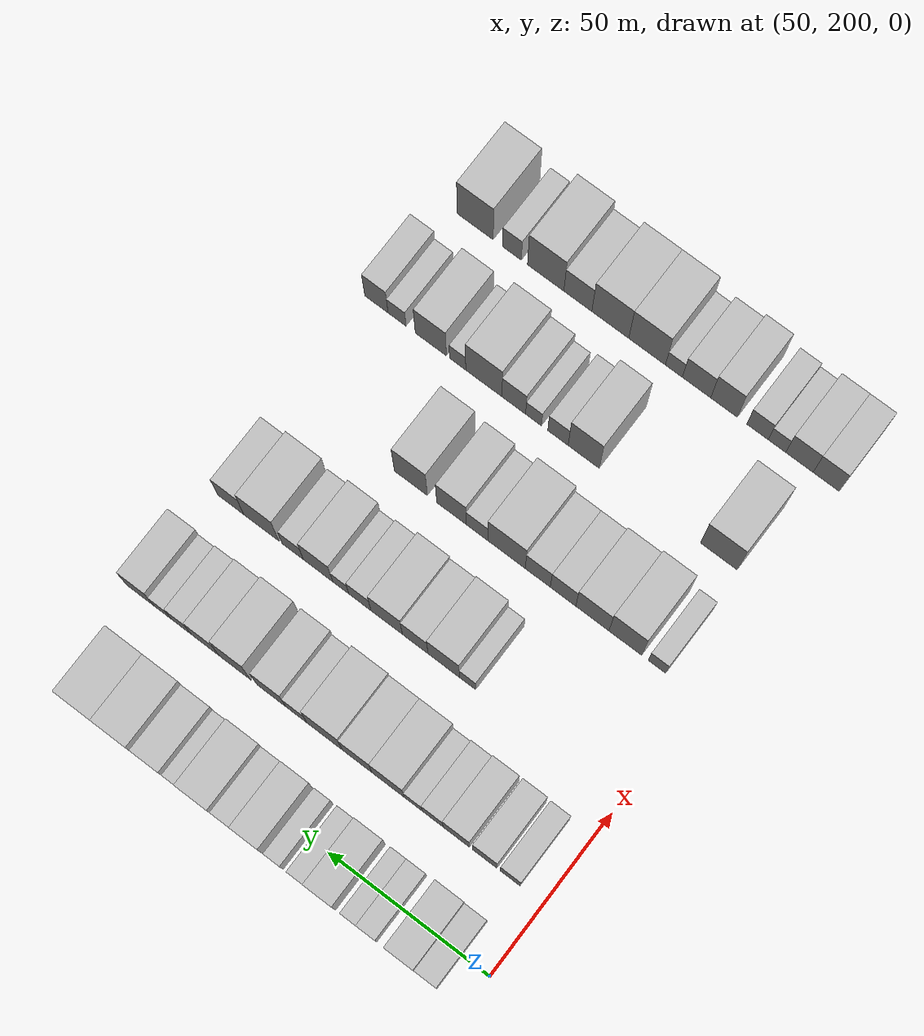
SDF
<sdf version="1.6">
 <world name="default">
  <model name="building_87">
   <static>1</static>
   <pose>50.0000 211.9110 0 0.000000 0.000000 0.000000</pose>
   <link name="link">
    <pose>0 0 7.50 0 0 0</pose>
    <collision name="collision"><geometry><box><size>20.0000 6.7478 15.0000</size></box></geometry></collision>
    <visual name="visual">
     <cast_shadows>0</cast_shadows>
     <geometry><box><size>20.0000 6.7478 15.0000</size></box></geometry>
     <material>
      <script>
       <uri>model://HANNAS_wall/materials/scripts</uri>
       <uri>model://HANNAS_wall/materials/textures</uri>
       <name>vrc/HANNAS_wall</name>
      </script>
     </material>
    </visual>
   </link>
  </model>
  <model name="building_88">
   <static>1</static>
   <pose>50.0000 219.6801 0 0.000000 0.000000 0.000000</pose>
   <link name="link">
    <pose>0 0 10.50 0 0 0</pose>
    <collision name="collision"><geometry><box><size>20.0000 8.7903 21.0000</size></box></geometry></collision>
    <visual name="visual">
     <cast_shadows>0</cast_shadows>
     <geometry><box><size>20.0000 8.7903 21.0000</size></box></geometry>
     <material>
      <script>
       <uri>model://HANNAS_wall/materials/scripts</uri>
       <uri>model://HANNAS_wall/materials/textures</uri>
       <name>vrc/HANNAS_wall</name>
      </script>
     </material>
    </visual>
   </link>
  </model>
  <model name="building_89">
   <static>1</static>
   <pose>50.0000 230.0266 0 0.000000 0.000000 0.000000</pose>
   <link name="link">
    <pose>0 0 6.00 0 0 0</pose>
    <collision name="collision"><geometry><box><size>20.0000 5.9026 12.0000</size></box></geometry></collision>
    <visual name="visual">
     <cast_shadows>0</cast_shadows>
     <geometry><box><size>20.0000 5.9026 12.0000</size></box></geometry>
     <material>
      <script>
       <uri>model://HANNAS_wall/materials/scripts</uri>
       <uri>model://HANNAS_wall/materials/textures</uri>
       <name>vrc/HANNAS_wall</name>
      </script>
     </material>
    </visual>
   </link>
  </model>
  <model name="building_90">
   <static>1</static>
   <pose>50.0000 235.4046 0 0.000000 0.000000 0.000000</pose>
   <link name="link">
    <pose>0 0 6.00 0 0 0</pose>
    <collision name="collision"><geometry><box><size>20.0000 4.8536 12.0000</size></box></geometry></collision>
    <visual name="visual">
     <cast_shadows>0</cast_shadows>
     <geometry><box><size>20.0000 4.8536 12.0000</size></box></geometry>
     <material>
      <script>
       <uri>model://HANNAS_wall/materials/scripts</uri>
       <uri>model://HANNAS_wall/materials/textures</uri>
       <name>vrc/HANNAS_wall</name>
      </script>
     </material>
    </visual>
   </link>
  </model>
  <model name="building_91">
   <static>1</static>
   <pose>50.0000 244.2342 0 0.000000 0.000000 0.000000</pose>
   <link name="link">
    <pose>0 0 9.00 0 0 0</pose>
    <collision name="collision"><geometry><box><size>20.0000 8.8056 18.0000</size></box></geometry></collision>
    <visual name="visual">
     <cast_shadows>0</cast_shadows>
     <geometry><box><size>20.0000 8.8056 18.0000</size></box></geometry>
     <material>
      <script>
       <uri>model://HANNAS_wall/materials/scripts</uri>
       <uri>model://HANNAS_wall/materials/textures</uri>
       <name>vrc/HANNAS_wall</name>
      </script>
     </material>
    </visual>
   </link>
  </model>
  <model name="building_92">
   <static>1</static>
   <pose>50.0000 251.3989 0 0.000000 0.000000 0.000000</pose>
   <link name="link">
    <pose>0 0 6.00 0 0 0</pose>
    <collision name="collision"><geometry><box><size>20.0000 5.5237 12.0000</size></box></geometry></collision>
    <visual name="visual">
     <cast_shadows>0</cast_shadows>
     <geometry><box><size>20.0000 5.5237 12.0000</size></box></geometry>
     <material>
      <script>
       <uri>model://HANNAS_wall/materials/scripts</uri>
       <uri>model://HANNAS_wall/materials/textures</uri>
       <name>vrc/HANNAS_wall</name>
      </script>
     </material>
    </visual>
   </link>
  </model>
  <model name="building_93">
   <static>1</static>
   <pose>50.0000 258.7114 0 0.000000 0.000000 0.000000</pose>
   <link name="link">
    <pose>0 0 6.00 0 0 0</pose>
    <collision name="collision"><geometry><box><size>20.0000 5.1014 12.0000</size></box></geometry></collision>
    <visual name="visual">
     <cast_shadows>0</cast_shadows>
     <geometry><box><size>20.0000 5.1014 12.0000</size></box></geometry>
     <material>
      <script>
       <uri>model://HANNAS_wall/materials/scripts</uri>
       <uri>model://HANNAS_wall/materials/textures</uri>
       <name>vrc/HANNAS_wall</name>
      </script>
     </material>
    </visual>
   </link>
  </model>
  <model name="building_94">
   <static>1</static>
   <pose>50.0000 266.6407 0 0.000000 0.000000 0.000000</pose>
   <link name="link">
    <pose>0 0 9.00 0 0 0</pose>
    <collision name="collision"><geometry><box><size>20.0000 8.7573 18.0000</size></box></geometry></collision>
    <visual name="visual">
     <cast_shadows>0</cast_shadows>
     <geometry><box><size>20.0000 8.7573 18.0000</size></box></geometry>
     <material>
      <script>
       <uri>model://HANNAS_wall/materials/scripts</uri>
       <uri>model://HANNAS_wall/materials/textures</uri>
       <name>vrc/HANNAS_wall</name>
      </script>
     </material>
    </visual>
   </link>
  </model>
  <model name="building_95">
   <static>1</static>
   <pose>50.0000 274.1439 0 0.000000 0.000000 0.000000</pose>
   <link name="link">
    <pose>0 0 7.50 0 0 0</pose>
    <collision name="collision"><geometry><box><size>20.0000 6.2490 15.0000</size></box></geometry></collision>
    <visual name="visual">
     <cast_shadows>0</cast_shadows>
     <geometry><box><size>20.0000 6.2490 15.0000</size></box></geometry>
     <material>
      <script>
       <uri>model://HANNAS_wall/materials/scripts</uri>
       <uri>model://HANNAS_wall/materials/textures</uri>
       <name>vrc/HANNAS_wall</name>
      </script>
     </material>
    </visual>
   </link>
  </model>
  <model name="building_96">
   <static>1</static>
   <pose>50.0000 282.3075 0 0.000000 0.000000 0.000000</pose>
   <link name="link">
    <pose>0 0 10.50 0 0 0</pose>
    <collision name="collision"><geometry><box><size>20.0000 10.0783 21.0000</size></box></geometry></collision>
    <visual name="visual">
     <cast_shadows>0</cast_shadows>
     <geometry><box><size>20.0000 10.0783 21.0000</size></box></geometry>
     <material>
      <script>
       <uri>model://HANNAS_wall/materials/scripts</uri>
       <uri>model://HANNAS_wall/materials/textures</uri>
       <name>vrc/HANNAS_wall</name>
      </script>
     </material>
    </visual>
   </link>
  </model>
  <model name="building_97">
   <static>1</static>
   <pose>50.0000 289.9833 0 0.000000 0.000000 0.000000</pose>
   <link name="link">
    <pose>0 0 6.00 0 0 0</pose>
    <collision name="collision"><geometry><box><size>20.0000 5.2733 12.0000</size></box></geometry></collision>
    <visual name="visual">
     <cast_shadows>0</cast_shadows>
     <geometry><box><size>20.0000 5.2733 12.0000</size></box></geometry>
     <material>
      <script>
       <uri>model://HANNAS_wall/materials/scripts</uri>
       <uri>model://HANNAS_wall/materials/textures</uri>
       <name>vrc/HANNAS_wall</name>
      </script>
     </material>
    </visual>
   </link>
  </model>
  <model name="building_98">
   <static>1</static>
   <pose>50.0000 297.0810 0 0.000000 0.000000 0.000000</pose>
   <link name="link">
    <pose>0 0 9.00 0 0 0</pose>
    <collision name="collision"><geometry><box><size>20.0000 8.9220 18.0000</size></box></geometry></collision>
    <visual name="visual">
     <cast_shadows>0</cast_shadows>
     <geometry><box><size>20.0000 8.9220 18.0000</size></box></geometry>
     <material>
      <script>
       <uri>model://HANNAS_wall/materials/scripts</uri>
       <uri>model://HANNAS_wall/materials/textures</uri>
       <name>vrc/HANNAS_wall</name>
      </script>
     </material>
    </visual>
   </link>
  </model>
  <model name="building_99">
   <static>1</static>
   <pose>50.0000 306.9969 0 0.000000 0.000000 0.000000</pose>
   <link name="link">
    <pose>0 0 12.00 0 0 0</pose>
    <collision name="collision"><geometry><box><size>20.0000 10.9099 24.0000</size></box></geometry></collision>
    <visual name="visual">
     <cast_shadows>0</cast_shadows>
     <geometry><box><size>20.0000 10.9099 24.0000</size></box></geometry>
     <material>
      <script>
       <uri>model://HANNAS_wall/materials/scripts</uri>
       <uri>model://HANNAS_wall/materials/textures</uri>
       <name>vrc/HANNAS_wall</name>
      </script>
     </material>
    </visual>
   </link>
  </model>
  <model name="building_100">
   <static>1</static>
   <pose>50.0000 318.2192 0 0.000000 0.000000 0.000000</pose>
   <link name="link">
    <pose>0 0 12.00 0 0 0</pose>
    <collision name="collision"><geometry><box><size>20.0000 11.5347 24.0000</size></box></geometry></collision>
    <visual name="visual">
     <cast_shadows>0</cast_shadows>
     <geometry><box><size>20.0000 11.5347 24.0000</size></box></geometry>
     <material>
      <script>
       <uri>model://HANNAS_wall/materials/scripts</uri>
       <uri>model://HANNAS_wall/materials/textures</uri>
       <name>vrc/HANNAS_wall</name>
      </script>
     </material>
    </visual>
   </link>
  </model>
  <model name="building_200">
   <static>1</static>
   <pose>82.0000 210.4566 0 0.000000 0.000000 0.000000</pose>
   <link name="link">
    <pose>0 0 7.50 0 0 0</pose>
    <collision name="collision"><geometry><box><size>20.0000 6.1697 15.0000</size></box></geometry></collision>
    <visual name="visual">
     <cast_shadows>0</cast_shadows>
     <geometry><box><size>20.0000 6.1697 15.0000</size></box></geometry>
     <material>
      <script>
       <uri>model://HANNAS_wall/materials/scripts</uri>
       <uri>model://HANNAS_wall/materials/textures</uri>
       <name>vrc/HANNAS_wall</name>
      </script>
     </material>
    </visual>
   </link>
  </model>
  <model name="building_201">
   <static>1</static>
   <pose>82.0000 218.2727 0 0.000000 0.000000 0.000000</pose>
   <link name="link">
    <pose>0 0 9.00 0 0 0</pose>
    <collision name="collision"><geometry><box><size>20.0000 7.4626 18.0000</size></box></geometry></collision>
    <visual name="visual">
     <cast_shadows>0</cast_shadows>
     <geometry><box><size>20.0000 7.4626 18.0000</size></box></geometry>
     <material>
      <script>
       <uri>model://HANNAS_wall/materials/scripts</uri>
       <uri>model://HANNAS_wall/materials/textures</uri>
       <name>vrc/HANNAS_wall</name>
      </script>
     </material>
    </visual>
   </link>
  </model>
  <model name="building_202">
   <static>1</static>
   <pose>82.0000 227.0749 0 0.000000 0.000000 0.000000</pose>
   <link name="link">
    <pose>0 0 9.00 0 0 0</pose>
    <collision name="collision"><geometry><box><size>20.0000 8.1417 18.0000</size></box></geometry></collision>
    <visual name="visual">
     <cast_shadows>0</cast_shadows>
     <geometry><box><size>20.0000 8.1417 18.0000</size></box></geometry>
     <material>
      <script>
       <uri>model://HANNAS_wall/materials/scripts</uri>
       <uri>model://HANNAS_wall/materials/textures</uri>
       <name>vrc/HANNAS_wall</name>
      </script>
     </material>
    </visual>
   </link>
  </model>
  <model name="building_203">
   <static>1</static>
   <pose>82.0000 234.3984 0 0.000000 0.000000 0.000000</pose>
   <link name="link">
    <pose>0 0 7.50 0 0 0</pose>
    <collision name="collision"><geometry><box><size>20.0000 6.5054 15.0000</size></box></geometry></collision>
    <visual name="visual">
     <cast_shadows>0</cast_shadows>
     <geometry><box><size>20.0000 6.5054 15.0000</size></box></geometry>
     <material>
      <script>
       <uri>model://HANNAS_wall/materials/scripts</uri>
       <uri>model://HANNAS_wall/materials/textures</uri>
       <name>vrc/HANNAS_wall</name>
      </script>
     </material>
    </visual>
   </link>
  </model>
  <model name="building_204">
   <static>1</static>
   <pose>82.0000 240.3894 0 0.000000 0.000000 0.000000</pose>
   <link name="link">
    <pose>0 0 6.00 0 0 0</pose>
    <collision name="collision"><geometry><box><size>20.0000 5.4767 12.0000</size></box></geometry></collision>
    <visual name="visual">
     <cast_shadows>0</cast_shadows>
     <geometry><box><size>20.0000 5.4767 12.0000</size></box></geometry>
     <material>
      <script>
       <uri>model://HANNAS_wall/materials/scripts</uri>
       <uri>model://HANNAS_wall/materials/textures</uri>
       <name>vrc/HANNAS_wall</name>
      </script>
     </material>
    </visual>
   </link>
  </model>
  <model name="building_205">
   <static>1</static>
   <pose>82.0000 248.1827 0 0.000000 0.000000 0.000000</pose>
   <link name="link">
    <pose>0 0 10.50 0 0 0</pose>
    <collision name="collision"><geometry><box><size>20.0000 10.1099 21.0000</size></box></geometry></collision>
    <visual name="visual">
     <cast_shadows>0</cast_shadows>
     <geometry><box><size>20.0000 10.1099 21.0000</size></box></geometry>
     <material>
      <script>
       <uri>model://HANNAS_wall/materials/scripts</uri>
       <uri>model://HANNAS_wall/materials/textures</uri>
       <name>vrc/HANNAS_wall</name>
      </script>
     </material>
    </visual>
   </link>
  </model>
  <model name="building_206">
   <static>1</static>
   <pose>82.0000 257.8901 0 0.000000 0.000000 0.000000</pose>
   <link name="link">
    <pose>0 0 10.50 0 0 0</pose>
    <collision name="collision"><geometry><box><size>20.0000 9.3049 21.0000</size></box></geometry></collision>
    <visual name="visual">
     <cast_shadows>0</cast_shadows>
     <geometry><box><size>20.0000 9.3049 21.0000</size></box></geometry>
     <material>
      <script>
       <uri>model://HANNAS_wall/materials/scripts</uri>
       <uri>model://HANNAS_wall/materials/textures</uri>
       <name>vrc/HANNAS_wall</name>
      </script>
     </material>
    </visual>
   </link>
  </model>
  <model name="building_207">
   <static>1</static>
   <pose>82.0000 268.0998 0 0.000000 0.000000 0.000000</pose>
   <link name="link">
    <pose>0 0 12.00 0 0 0</pose>
    <collision name="collision"><geometry><box><size>20.0000 11.1146 24.0000</size></box></geometry></collision>
    <visual name="visual">
     <cast_shadows>0</cast_shadows>
     <geometry><box><size>20.0000 11.1146 24.0000</size></box></geometry>
     <material>
      <script>
       <uri>model://HANNAS_wall/materials/scripts</uri>
       <uri>model://HANNAS_wall/materials/textures</uri>
       <name>vrc/HANNAS_wall</name>
      </script>
     </material>
    </visual>
   </link>
  </model>
  <model name="building_208">
   <static>1</static>
   <pose>82.0000 277.0152 0 0.000000 0.000000 0.000000</pose>
   <link name="link">
    <pose>0 0 7.50 0 0 0</pose>
    <collision name="collision"><geometry><box><size>20.0000 6.7163 15.0000</size></box></geometry></collision>
    <visual name="visual">
     <cast_shadows>0</cast_shadows>
     <geometry><box><size>20.0000 6.7163 15.0000</size></box></geometry>
     <material>
      <script>
       <uri>model://HANNAS_wall/materials/scripts</uri>
       <uri>model://HANNAS_wall/materials/textures</uri>
       <name>vrc/HANNAS_wall</name>
      </script>
     </material>
    </visual>
   </link>
  </model>
  <model name="building_209">
   <static>1</static>
   <pose>82.0000 284.9316 0 0.000000 0.000000 0.000000</pose>
   <link name="link">
    <pose>0 0 10.50 0 0 0</pose>
    <collision name="collision"><geometry><box><size>20.0000 9.1165 21.0000</size></box></geometry></collision>
    <visual name="visual">
     <cast_shadows>0</cast_shadows>
     <geometry><box><size>20.0000 9.1165 21.0000</size></box></geometry>
     <material>
      <script>
       <uri>model://HANNAS_wall/materials/scripts</uri>
       <uri>model://HANNAS_wall/materials/textures</uri>
       <name>vrc/HANNAS_wall</name>
      </script>
     </material>
    </visual>
   </link>
  </model>
  <model name="building_210">
   <static>1</static>
   <pose>82.0000 296.5246 0 0.000000 0.000000 0.000000</pose>
   <link name="link">
    <pose>0 0 12.00 0 0 0</pose>
    <collision name="collision"><geometry><box><size>20.0000 10.0693 24.0000</size></box></geometry></collision>
    <visual name="visual">
     <cast_shadows>0</cast_shadows>
     <geometry><box><size>20.0000 10.0693 24.0000</size></box></geometry>
     <material>
      <script>
       <uri>model://HANNAS_wall/materials/scripts</uri>
       <uri>model://HANNAS_wall/materials/textures</uri>
       <name>vrc/HANNAS_wall</name>
      </script>
     </material>
    </visual>
   </link>
  </model>
  <model name="building_211">
   <static>1</static>
   <pose>82.0000 306.0070 0 0.000000 0.000000 0.000000</pose>
   <link name="link">
    <pose>0 0 9.00 0 0 0</pose>
    <collision name="collision"><geometry><box><size>20.0000 8.8955 18.0000</size></box></geometry></collision>
    <visual name="visual">
     <cast_shadows>0</cast_shadows>
     <geometry><box><size>20.0000 8.8955 18.0000</size></box></geometry>
     <material>
      <script>
       <uri>model://HANNAS_wall/materials/scripts</uri>
       <uri>model://HANNAS_wall/materials/textures</uri>
       <name>vrc/HANNAS_wall</name>
      </script>
     </material>
    </visual>
   </link>
  </model>
  <model name="building_212">
   <static>1</static>
   <pose>82.0000 313.7007 0 0.000000 0.000000 0.000000</pose>
   <link name="link">
    <pose>0 0 7.50 0 0 0</pose>
    <collision name="collision"><geometry><box><size>20.0000 6.4919 15.0000</size></box></geometry></collision>
    <visual name="visual">
     <cast_shadows>0</cast_shadows>
     <geometry><box><size>20.0000 6.4919 15.0000</size></box></geometry>
     <material>
      <script>
       <uri>model://HANNAS_wall/materials/scripts</uri>
       <uri>model://HANNAS_wall/materials/textures</uri>
       <name>vrc/HANNAS_wall</name>
      </script>
     </material>
    </visual>
   </link>
  </model>
  <model name="building_213">
   <static>1</static>
   <pose>82.0000 319.7476 0 0.000000 0.000000 0.000000</pose>
   <link name="link">
    <pose>0 0 6.00 0 0 0</pose>
    <collision name="collision"><geometry><box><size>20.0000 5.6020 12.0000</size></box></geometry></collision>
    <visual name="visual">
     <cast_shadows>0</cast_shadows>
     <geometry><box><size>20.0000 5.6020 12.0000</size></box></geometry>
     <material>
      <script>
       <uri>model://HANNAS_wall/materials/scripts</uri>
       <uri>model://HANNAS_wall/materials/textures</uri>
       <name>vrc/HANNAS_wall</name>
      </script>
     </material>
    </visual>
   </link>
  </model>
  <model name="building_214">
   <static>1</static>
   <pose>82.0000 326.8966 0 0.000000 0.000000 0.000000</pose>
   <link name="link">
    <pose>0 0 9.00 0 0 0</pose>
    <collision name="collision"><geometry><box><size>20.0000 8.6959 18.0000</size></box></geometry></collision>
    <visual name="visual">
     <cast_shadows>0</cast_shadows>
     <geometry><box><size>20.0000 8.6959 18.0000</size></box></geometry>
     <material>
      <script>
       <uri>model://HANNAS_wall/materials/scripts</uri>
       <uri>model://HANNAS_wall/materials/textures</uri>
       <name>vrc/HANNAS_wall</name>
      </script>
     </material>
    </visual>
   </link>
  </model>
  <model name="building_322">
   <static>1</static>
   <pose>114.0000 247.9504 0 0.000000 0.000000 0.000000</pose>
   <link name="link">
    <pose>0 0 6.00 0 0 0</pose>
    <collision name="collision"><geometry><box><size>20.0000 5.0676 12.0000</size></box></geometry></collision>
    <visual name="visual">
     <cast_shadows>0</cast_shadows>
     <geometry><box><size>20.0000 5.0676 12.0000</size></box></geometry>
     <material>
      <script>
       <uri>model://HANNAS_wall/materials/scripts</uri>
       <uri>model://HANNAS_wall/materials/textures</uri>
       <name>vrc/HANNAS_wall</name>
      </script>
     </material>
    </visual>
   </link>
  </model>
  <model name="building_323">
   <static>1</static>
   <pose>114.0000 255.4274 0 0.000000 0.000000 0.000000</pose>
   <link name="link">
    <pose>0 0 10.50 0 0 0</pose>
    <collision name="collision"><geometry><box><size>20.0000 9.8864 21.0000</size></box></geometry></collision>
    <visual name="visual">
     <cast_shadows>0</cast_shadows>
     <geometry><box><size>20.0000 9.8864 21.0000</size></box></geometry>
     <material>
      <script>
       <uri>model://HANNAS_wall/materials/scripts</uri>
       <uri>model://HANNAS_wall/materials/textures</uri>
       <name>vrc/HANNAS_wall</name>
      </script>
     </material>
    </visual>
   </link>
  </model>
  <model name="building_324">
   <static>1</static>
   <pose>114.0000 264.4057 0 0.000000 0.000000 0.000000</pose>
   <link name="link">
    <pose>0 0 9.00 0 0 0</pose>
    <collision name="collision"><geometry><box><size>20.0000 8.0701 18.0000</size></box></geometry></collision>
    <visual name="visual">
     <cast_shadows>0</cast_shadows>
     <geometry><box><size>20.0000 8.0701 18.0000</size></box></geometry>
     <material>
      <script>
       <uri>model://HANNAS_wall/materials/scripts</uri>
       <uri>model://HANNAS_wall/materials/textures</uri>
       <name>vrc/HANNAS_wall</name>
      </script>
     </material>
    </visual>
   </link>
  </model>
  <model name="building_325">
   <static>1</static>
   <pose>114.0000 273.4191 0 0.000000 0.000000 0.000000</pose>
   <link name="link">
    <pose>0 0 10.50 0 0 0</pose>
    <collision name="collision"><geometry><box><size>20.0000 9.9567 21.0000</size></box></geometry></collision>
    <visual name="visual">
     <cast_shadows>0</cast_shadows>
     <geometry><box><size>20.0000 9.9567 21.0000</size></box></geometry>
     <material>
      <script>
       <uri>model://HANNAS_wall/materials/scripts</uri>
       <uri>model://HANNAS_wall/materials/textures</uri>
       <name>vrc/HANNAS_wall</name>
      </script>
     </material>
    </visual>
   </link>
  </model>
  <model name="building_326">
   <static>1</static>
   <pose>114.0000 281.9434 0 0.000000 0.000000 0.000000</pose>
   <link name="link">
    <pose>0 0 7.50 0 0 0</pose>
    <collision name="collision"><geometry><box><size>20.0000 7.0919 15.0000</size></box></geometry></collision>
    <visual name="visual">
     <cast_shadows>0</cast_shadows>
     <geometry><box><size>20.0000 7.0919 15.0000</size></box></geometry>
     <material>
      <script>
       <uri>model://HANNAS_wall/materials/scripts</uri>
       <uri>model://HANNAS_wall/materials/textures</uri>
       <name>vrc/HANNAS_wall</name>
      </script>
     </material>
    </visual>
   </link>
  </model>
  <model name="building_327">
   <static>1</static>
   <pose>114.0000 288.0153 0 0.000000 0.000000 0.000000</pose>
   <link name="link">
    <pose>0 0 6.00 0 0 0</pose>
    <collision name="collision"><geometry><box><size>20.0000 5.0517 12.0000</size></box></geometry></collision>
    <visual name="visual">
     <cast_shadows>0</cast_shadows>
     <geometry><box><size>20.0000 5.0517 12.0000</size></box></geometry>
     <material>
      <script>
       <uri>model://HANNAS_wall/materials/scripts</uri>
       <uri>model://HANNAS_wall/materials/textures</uri>
       <name>vrc/HANNAS_wall</name>
      </script>
     </material>
    </visual>
   </link>
  </model>
  <model name="building_328">
   <static>1</static>
   <pose>114.0000 295.2343 0 0.000000 0.000000 0.000000</pose>
   <link name="link">
    <pose>0 0 10.50 0 0 0</pose>
    <collision name="collision"><geometry><box><size>20.0000 9.3864 21.0000</size></box></geometry></collision>
    <visual name="visual">
     <cast_shadows>0</cast_shadows>
     <geometry><box><size>20.0000 9.3864 21.0000</size></box></geometry>
     <material>
      <script>
       <uri>model://HANNAS_wall/materials/scripts</uri>
       <uri>model://HANNAS_wall/materials/textures</uri>
       <name>vrc/HANNAS_wall</name>
      </script>
     </material>
    </visual>
   </link>
  </model>
  <model name="building_329">
   <static>1</static>
   <pose>114.0000 303.3341 0 0.000000 0.000000 0.000000</pose>
   <link name="link">
    <pose>0 0 7.50 0 0 0</pose>
    <collision name="collision"><geometry><box><size>20.0000 6.8130 15.0000</size></box></geometry></collision>
    <visual name="visual">
     <cast_shadows>0</cast_shadows>
     <geometry><box><size>20.0000 6.8130 15.0000</size></box></geometry>
     <material>
      <script>
       <uri>model://HANNAS_wall/materials/scripts</uri>
       <uri>model://HANNAS_wall/materials/textures</uri>
       <name>vrc/HANNAS_wall</name>
      </script>
     </material>
    </visual>
   </link>
  </model>
  <model name="building_330">
   <static>1</static>
   <pose>114.0000 313.3541 0 0.000000 0.000000 0.000000</pose>
   <link name="link">
    <pose>0 0 12.00 0 0 0</pose>
    <collision name="collision"><geometry><box><size>20.0000 11.2269 24.0000</size></box></geometry></collision>
    <visual name="visual">
     <cast_shadows>0</cast_shadows>
     <geometry><box><size>20.0000 11.2269 24.0000</size></box></geometry>
     <material>
      <script>
       <uri>model://HANNAS_wall/materials/scripts</uri>
       <uri>model://HANNAS_wall/materials/textures</uri>
       <name>vrc/HANNAS_wall</name>
      </script>
     </material>
    </visual>
   </link>
  </model>
  <model name="building_331">
   <static>1</static>
   <pose>114.0000 323.1996 0 0.000000 0.000000 0.000000</pose>
   <link name="link">
    <pose>0 0 9.00 0 0 0</pose>
    <collision name="collision"><geometry><box><size>20.0000 8.4641 18.0000</size></box></geometry></collision>
    <visual name="visual">
     <cast_shadows>0</cast_shadows>
     <geometry><box><size>20.0000 8.4641 18.0000</size></box></geometry>
     <material>
      <script>
       <uri>model://HANNAS_wall/materials/scripts</uri>
       <uri>model://HANNAS_wall/materials/textures</uri>
       <name>vrc/HANNAS_wall</name>
      </script>
     </material>
    </visual>
   </link>
  </model>
  <model name="building_441">
   <static>1</static>
   <pose>146.0000 212.8642 0 0.000000 0.000000 0.000000</pose>
   <link name="link">
    <pose>0 0 6.00 0 0 0</pose>
    <collision name="collision"><geometry><box><size>20.0000 5.4628 12.0000</size></box></geometry></collision>
    <visual name="visual">
     <cast_shadows>0</cast_shadows>
     <geometry><box><size>20.0000 5.4628 12.0000</size></box></geometry>
     <material>
      <script>
       <uri>model://HANNAS_wall/materials/scripts</uri>
       <uri>model://HANNAS_wall/materials/textures</uri>
       <name>vrc/HANNAS_wall</name>
      </script>
     </material>
    </visual>
   </link>
  </model>
  <model name="building_442">
   <static>1</static>
   <pose>146.0000 222.7075 0 0.000000 0.000000 0.000000</pose>
   <link name="link">
    <pose>0 0 12.00 0 0 0</pose>
    <collision name="collision"><geometry><box><size>20.0000 10.2238 24.0000</size></box></geometry></collision>
    <visual name="visual">
     <cast_shadows>0</cast_shadows>
     <geometry><box><size>20.0000 10.2238 24.0000</size></box></geometry>
     <material>
      <script>
       <uri>model://HANNAS_wall/materials/scripts</uri>
       <uri>model://HANNAS_wall/materials/textures</uri>
       <name>vrc/HANNAS_wall</name>
      </script>
     </material>
    </visual>
   </link>
  </model>
  <model name="building_443">
   <static>1</static>
   <pose>146.0000 233.0141 0 0.000000 0.000000 0.000000</pose>
   <link name="link">
    <pose>0 0 10.50 0 0 0</pose>
    <collision name="collision"><geometry><box><size>20.0000 10.3893 21.0000</size></box></geometry></collision>
    <visual name="visual">
     <cast_shadows>0</cast_shadows>
     <geometry><box><size>20.0000 10.3893 21.0000</size></box></geometry>
     <material>
      <script>
       <uri>model://HANNAS_wall/materials/scripts</uri>
       <uri>model://HANNAS_wall/materials/textures</uri>
       <name>vrc/HANNAS_wall</name>
      </script>
     </material>
    </visual>
   </link>
  </model>
  <model name="building_444">
   <static>1</static>
   <pose>146.0000 242.2068 0 0.000000 0.000000 0.000000</pose>
   <link name="link">
    <pose>0 0 9.00 0 0 0</pose>
    <collision name="collision"><geometry><box><size>20.0000 7.9962 18.0000</size></box></geometry></collision>
    <visual name="visual">
     <cast_shadows>0</cast_shadows>
     <geometry><box><size>20.0000 7.9962 18.0000</size></box></geometry>
     <material>
      <script>
       <uri>model://HANNAS_wall/materials/scripts</uri>
       <uri>model://HANNAS_wall/materials/textures</uri>
       <name>vrc/HANNAS_wall</name>
      </script>
     </material>
    </visual>
   </link>
  </model>
  <model name="building_445">
   <static>1</static>
   <pose>146.0000 250.1479 0 0.000000 0.000000 0.000000</pose>
   <link name="link">
    <pose>0 0 9.00 0 0 0</pose>
    <collision name="collision"><geometry><box><size>20.0000 7.8859 18.0000</size></box></geometry></collision>
    <visual name="visual">
     <cast_shadows>0</cast_shadows>
     <geometry><box><size>20.0000 7.8859 18.0000</size></box></geometry>
     <material>
      <script>
       <uri>model://HANNAS_wall/materials/scripts</uri>
       <uri>model://HANNAS_wall/materials/textures</uri>
       <name>vrc/HANNAS_wall</name>
      </script>
     </material>
    </visual>
   </link>
  </model>
  <model name="building_446">
   <static>1</static>
   <pose>146.0000 260.0347 0 0.000000 0.000000 0.000000</pose>
   <link name="link">
    <pose>0 0 12.00 0 0 0</pose>
    <collision name="collision"><geometry><box><size>20.0000 11.8876 24.0000</size></box></geometry></collision>
    <visual name="visual">
     <cast_shadows>0</cast_shadows>
     <geometry><box><size>20.0000 11.8876 24.0000</size></box></geometry>
     <material>
      <script>
       <uri>model://HANNAS_wall/materials/scripts</uri>
       <uri>model://HANNAS_wall/materials/textures</uri>
       <name>vrc/HANNAS_wall</name>
      </script>
     </material>
    </visual>
   </link>
  </model>
  <model name="building_447">
   <static>1</static>
   <pose>146.0000 269.3536 0 0.000000 0.000000 0.000000</pose>
   <link name="link">
    <pose>0 0 7.50 0 0 0</pose>
    <collision name="collision"><geometry><box><size>20.0000 6.7502 15.0000</size></box></geometry></collision>
    <visual name="visual">
     <cast_shadows>0</cast_shadows>
     <geometry><box><size>20.0000 6.7502 15.0000</size></box></geometry>
     <material>
      <script>
       <uri>model://HANNAS_wall/materials/scripts</uri>
       <uri>model://HANNAS_wall/materials/textures</uri>
       <name>vrc/HANNAS_wall</name>
      </script>
     </material>
    </visual>
   </link>
  </model>
  <model name="building_448">
   <static>1</static>
   <pose>146.0000 277.4259 0 0.000000 0.000000 0.000000</pose>
   <link name="link">
    <pose>0 0 10.50 0 0 0</pose>
    <collision name="collision"><geometry><box><size>20.0000 9.3944 21.0000</size></box></geometry></collision>
    <visual name="visual">
     <cast_shadows>0</cast_shadows>
     <geometry><box><size>20.0000 9.3944 21.0000</size></box></geometry>
     <material>
      <script>
       <uri>model://HANNAS_wall/materials/scripts</uri>
       <uri>model://HANNAS_wall/materials/textures</uri>
       <name>vrc/HANNAS_wall</name>
      </script>
     </material>
    </visual>
   </link>
  </model>
  <model name="building_449">
   <static>1</static>
   <pose>146.0000 290.3874 0 0.000000 0.000000 0.000000</pose>
   <link name="link">
    <pose>0 0 12.00 0 0 0</pose>
    <collision name="collision"><geometry><box><size>20.0000 10.5287 24.0000</size></box></geometry></collision>
    <visual name="visual">
     <cast_shadows>0</cast_shadows>
     <geometry><box><size>20.0000 10.5287 24.0000</size></box></geometry>
     <material>
      <script>
       <uri>model://HANNAS_wall/materials/scripts</uri>
       <uri>model://HANNAS_wall/materials/textures</uri>
       <name>vrc/HANNAS_wall</name>
      </script>
     </material>
    </visual>
   </link>
  </model>
  <model name="building_563">
   <static>1</static>
   <pose>178.0000 217.0853 0 0.000000 0.000000 0.000000</pose>
   <link name="link">
    <pose>0 0 12.00 0 0 0</pose>
    <collision name="collision"><geometry><box><size>20.0000 11.4432 24.0000</size></box></geometry></collision>
    <visual name="visual">
     <cast_shadows>0</cast_shadows>
     <geometry><box><size>20.0000 11.4432 24.0000</size></box></geometry>
     <material>
      <script>
       <uri>model://HANNAS_wall/materials/scripts</uri>
       <uri>model://HANNAS_wall/materials/textures</uri>
       <name>vrc/HANNAS_wall</name>
      </script>
     </material>
    </visual>
   </link>
  </model>
  <model name="building_564">
   <static>1</static>
   <pose>178.0000 259.6382 0 0.000000 0.000000 0.000000</pose>
   <link name="link">
    <pose>0 0 12.00 0 0 0</pose>
    <collision name="collision"><geometry><box><size>20.0000 9.8875 24.0000</size></box></geometry></collision>
    <visual name="visual">
     <cast_shadows>0</cast_shadows>
     <geometry><box><size>20.0000 9.8875 24.0000</size></box></geometry>
     <material>
      <script>
       <uri>model://HANNAS_wall/materials/scripts</uri>
       <uri>model://HANNAS_wall/materials/textures</uri>
       <name>vrc/HANNAS_wall</name>
      </script>
     </material>
    </visual>
   </link>
  </model>
  <model name="building_565">
   <static>1</static>
   <pose>178.0000 267.8157 0 0.000000 0.000000 0.000000</pose>
   <link name="link">
    <pose>0 0 7.50 0 0 0</pose>
    <collision name="collision"><geometry><box><size>20.0000 6.4674 15.0000</size></box></geometry></collision>
    <visual name="visual">
     <cast_shadows>0</cast_shadows>
     <geometry><box><size>20.0000 6.4674 15.0000</size></box></geometry>
     <material>
      <script>
       <uri>model://HANNAS_wall/materials/scripts</uri>
       <uri>model://HANNAS_wall/materials/textures</uri>
       <name>vrc/HANNAS_wall</name>
      </script>
     </material>
    </visual>
   </link>
  </model>
  <model name="building_566">
   <static>1</static>
   <pose>178.0000 275.5807 0 0.000000 0.000000 0.000000</pose>
   <link name="link">
    <pose>0 0 6.00 0 0 0</pose>
    <collision name="collision"><geometry><box><size>20.0000 5.0627 12.0000</size></box></geometry></collision>
    <visual name="visual">
     <cast_shadows>0</cast_shadows>
     <geometry><box><size>20.0000 5.0627 12.0000</size></box></geometry>
     <material>
      <script>
       <uri>model://HANNAS_wall/materials/scripts</uri>
       <uri>model://HANNAS_wall/materials/textures</uri>
       <name>vrc/HANNAS_wall</name>
      </script>
     </material>
    </visual>
   </link>
  </model>
  <model name="building_567">
   <static>1</static>
   <pose>178.0000 281.9136 0 0.000000 0.000000 0.000000</pose>
   <link name="link">
    <pose>0 0 9.00 0 0 0</pose>
    <collision name="collision"><geometry><box><size>20.0000 7.6030 18.0000</size></box></geometry></collision>
    <visual name="visual">
     <cast_shadows>0</cast_shadows>
     <geometry><box><size>20.0000 7.6030 18.0000</size></box></geometry>
     <material>
      <script>
       <uri>model://HANNAS_wall/materials/scripts</uri>
       <uri>model://HANNAS_wall/materials/textures</uri>
       <name>vrc/HANNAS_wall</name>
      </script>
     </material>
    </visual>
   </link>
  </model>
  <model name="building_568">
   <static>1</static>
   <pose>178.0000 291.4992 0 0.000000 0.000000 0.000000</pose>
   <link name="link">
    <pose>0 0 12.00 0 0 0</pose>
    <collision name="collision"><geometry><box><size>20.0000 11.5683 24.0000</size></box></geometry></collision>
    <visual name="visual">
     <cast_shadows>0</cast_shadows>
     <geometry><box><size>20.0000 11.5683 24.0000</size></box></geometry>
     <material>
      <script>
       <uri>model://HANNAS_wall/materials/scripts</uri>
       <uri>model://HANNAS_wall/materials/textures</uri>
       <name>vrc/HANNAS_wall</name>
      </script>
     </material>
    </visual>
   </link>
  </model>
  <model name="building_569">
   <static>1</static>
   <pose>178.0000 299.8939 0 0.000000 0.000000 0.000000</pose>
   <link name="link">
    <pose>0 0 6.00 0 0 0</pose>
    <collision name="collision"><geometry><box><size>20.0000 5.2210 12.0000</size></box></geometry></collision>
    <visual name="visual">
     <cast_shadows>0</cast_shadows>
     <geometry><box><size>20.0000 5.2210 12.0000</size></box></geometry>
     <material>
      <script>
       <uri>model://HANNAS_wall/materials/scripts</uri>
       <uri>model://HANNAS_wall/materials/textures</uri>
       <name>vrc/HANNAS_wall</name>
      </script>
     </material>
    </visual>
   </link>
  </model>
  <model name="building_570">
   <static>1</static>
   <pose>178.0000 308.5237 0 0.000000 0.000000 0.000000</pose>
   <link name="link">
    <pose>0 0 10.50 0 0 0</pose>
    <collision name="collision"><geometry><box><size>20.0000 10.0388 21.0000</size></box></geometry></collision>
    <visual name="visual">
     <cast_shadows>0</cast_shadows>
     <geometry><box><size>20.0000 10.0388 21.0000</size></box></geometry>
     <material>
      <script>
       <uri>model://HANNAS_wall/materials/scripts</uri>
       <uri>model://HANNAS_wall/materials/textures</uri>
       <name>vrc/HANNAS_wall</name>
      </script>
     </material>
    </visual>
   </link>
  </model>
  <model name="building_571">
   <static>1</static>
   <pose>178.0000 319.4562 0 0.000000 0.000000 0.000000</pose>
   <link name="link">
    <pose>0 0 6.00 0 0 0</pose>
    <collision name="collision"><geometry><box><size>20.0000 5.8261 12.0000</size></box></geometry></collision>
    <visual name="visual">
     <cast_shadows>0</cast_shadows>
     <geometry><box><size>20.0000 5.8261 12.0000</size></box></geometry>
     <material>
      <script>
       <uri>model://HANNAS_wall/materials/scripts</uri>
       <uri>model://HANNAS_wall/materials/textures</uri>
       <name>vrc/HANNAS_wall</name>
      </script>
     </material>
    </visual>
   </link>
  </model>
  <model name="building_572">
   <static>1</static>
   <pose>178.0000 326.1584 0 0.000000 0.000000 0.000000</pose>
   <link name="link">
    <pose>0 0 9.00 0 0 0</pose>
    <collision name="collision"><geometry><box><size>20.0000 7.5784 18.0000</size></box></geometry></collision>
    <visual name="visual">
     <cast_shadows>0</cast_shadows>
     <geometry><box><size>20.0000 7.5784 18.0000</size></box></geometry>
     <material>
      <script>
       <uri>model://HANNAS_wall/materials/scripts</uri>
       <uri>model://HANNAS_wall/materials/textures</uri>
       <name>vrc/HANNAS_wall</name>
      </script>
     </material>
    </visual>
   </link>
  </model>
  <model name="building_674">
   <static>1</static>
   <pose>210.0000 206.7400 0 0.000000 0.000000 0.000000</pose>
   <link name="link">
    <pose>0 0 9.00 0 0 0</pose>
    <collision name="collision"><geometry><box><size>20.0000 8.1778 18.0000</size></box></geometry></collision>
    <visual name="visual">
     <cast_shadows>0</cast_shadows>
     <geometry><box><size>20.0000 8.1778 18.0000</size></box></geometry>
     <material>
      <script>
       <uri>model://HANNAS_wall/materials/scripts</uri>
       <uri>model://HANNAS_wall/materials/textures</uri>
       <name>vrc/HANNAS_wall</name>
      </script>
     </material>
    </visual>
   </link>
  </model>
  <model name="building_675">
   <static>1</static>
   <pose>210.0000 215.1123 0 0.000000 0.000000 0.000000</pose>
   <link name="link">
    <pose>0 0 9.00 0 0 0</pose>
    <collision name="collision"><geometry><box><size>20.0000 8.5667 18.0000</size></box></geometry></collision>
    <visual name="visual">
     <cast_shadows>0</cast_shadows>
     <geometry><box><size>20.0000 8.5667 18.0000</size></box></geometry>
     <material>
      <script>
       <uri>model://HANNAS_wall/materials/scripts</uri>
       <uri>model://HANNAS_wall/materials/textures</uri>
       <name>vrc/HANNAS_wall</name>
      </script>
     </material>
    </visual>
   </link>
  </model>
  <model name="building_676">
   <static>1</static>
   <pose>210.0000 222.1429 0 0.000000 0.000000 0.000000</pose>
   <link name="link">
    <pose>0 0 6.00 0 0 0</pose>
    <collision name="collision"><geometry><box><size>20.0000 5.4945 12.0000</size></box></geometry></collision>
    <visual name="visual">
     <cast_shadows>0</cast_shadows>
     <geometry><box><size>20.0000 5.4945 12.0000</size></box></geometry>
     <material>
      <script>
       <uri>model://HANNAS_wall/materials/scripts</uri>
       <uri>model://HANNAS_wall/materials/textures</uri>
       <name>vrc/HANNAS_wall</name>
      </script>
     </material>
    </visual>
   </link>
  </model>
  <model name="building_677">
   <static>1</static>
   <pose>210.0000 228.2508 0 0.000000 0.000000 0.000000</pose>
   <link name="link">
    <pose>0 0 7.50 0 0 0</pose>
    <collision name="collision"><geometry><box><size>20.0000 6.7214 15.0000</size></box></geometry></collision>
    <visual name="visual">
     <cast_shadows>0</cast_shadows>
     <geometry><box><size>20.0000 6.7214 15.0000</size></box></geometry>
     <material>
      <script>
       <uri>model://HANNAS_wall/materials/scripts</uri>
       <uri>model://HANNAS_wall/materials/textures</uri>
       <name>vrc/HANNAS_wall</name>
      </script>
     </material>
    </visual>
   </link>
  </model>
  <model name="building_678">
   <static>1</static>
   <pose>210.0000 238.8223 0 0.000000 0.000000 0.000000</pose>
   <link name="link">
    <pose>0 0 10.50 0 0 0</pose>
    <collision name="collision"><geometry><box><size>20.0000 8.4217 21.0000</size></box></geometry></collision>
    <visual name="visual">
     <cast_shadows>0</cast_shadows>
     <geometry><box><size>20.0000 8.4217 21.0000</size></box></geometry>
     <material>
      <script>
       <uri>model://HANNAS_wall/materials/scripts</uri>
       <uri>model://HANNAS_wall/materials/textures</uri>
       <name>vrc/HANNAS_wall</name>
      </script>
     </material>
    </visual>
   </link>
  </model>
  <model name="building_679">
   <static>1</static>
   <pose>210.0000 247.5254 0 0.000000 0.000000 0.000000</pose>
   <link name="link">
    <pose>0 0 9.00 0 0 0</pose>
    <collision name="collision"><geometry><box><size>20.0000 8.9845 18.0000</size></box></geometry></collision>
    <visual name="visual">
     <cast_shadows>0</cast_shadows>
     <geometry><box><size>20.0000 8.9845 18.0000</size></box></geometry>
     <material>
      <script>
       <uri>model://HANNAS_wall/materials/scripts</uri>
       <uri>model://HANNAS_wall/materials/textures</uri>
       <name>vrc/HANNAS_wall</name>
      </script>
     </material>
    </visual>
   </link>
  </model>
  <model name="building_680">
   <static>1</static>
   <pose>210.0000 254.7142 0 0.000000 0.000000 0.000000</pose>
   <link name="link">
    <pose>0 0 6.00 0 0 0</pose>
    <collision name="collision"><geometry><box><size>20.0000 5.3931 12.0000</size></box></geometry></collision>
    <visual name="visual">
     <cast_shadows>0</cast_shadows>
     <geometry><box><size>20.0000 5.3931 12.0000</size></box></geometry>
     <material>
      <script>
       <uri>model://HANNAS_wall/materials/scripts</uri>
       <uri>model://HANNAS_wall/materials/textures</uri>
       <name>vrc/HANNAS_wall</name>
      </script>
     </material>
    </visual>
   </link>
  </model>
  <model name="building_681">
   <static>1</static>
   <pose>210.0000 263.2574 0 0.000000 0.000000 0.000000</pose>
   <link name="link">
    <pose>0 0 12.00 0 0 0</pose>
    <collision name="collision"><geometry><box><size>20.0000 11.6932 24.0000</size></box></geometry></collision>
    <visual name="visual">
     <cast_shadows>0</cast_shadows>
     <geometry><box><size>20.0000 11.6932 24.0000</size></box></geometry>
     <material>
      <script>
       <uri>model://HANNAS_wall/materials/scripts</uri>
       <uri>model://HANNAS_wall/materials/textures</uri>
       <name>vrc/HANNAS_wall</name>
      </script>
     </material>
    </visual>
   </link>
  </model>
  <model name="building_682">
   <static>1</static>
   <pose>210.0000 275.0119 0 0.000000 0.000000 0.000000</pose>
   <link name="link">
    <pose>0 0 12.00 0 0 0</pose>
    <collision name="collision"><geometry><box><size>20.0000 11.8159 24.0000</size></box></geometry></collision>
    <visual name="visual">
     <cast_shadows>0</cast_shadows>
     <geometry><box><size>20.0000 11.8159 24.0000</size></box></geometry>
     <material>
      <script>
       <uri>model://HANNAS_wall/materials/scripts</uri>
       <uri>model://HANNAS_wall/materials/textures</uri>
       <name>vrc/HANNAS_wall</name>
      </script>
     </material>
    </visual>
   </link>
  </model>
  <model name="building_683">
   <static>1</static>
   <pose>210.0000 285.4140 0 0.000000 0.000000 0.000000</pose>
   <link name="link">
    <pose>0 0 9.00 0 0 0</pose>
    <collision name="collision"><geometry><box><size>20.0000 8.9884 18.0000</size></box></geometry></collision>
    <visual name="visual">
     <cast_shadows>0</cast_shadows>
     <geometry><box><size>20.0000 8.9884 18.0000</size></box></geometry>
     <material>
      <script>
       <uri>model://HANNAS_wall/materials/scripts</uri>
       <uri>model://HANNAS_wall/materials/textures</uri>
       <name>vrc/HANNAS_wall</name>
      </script>
     </material>
    </visual>
   </link>
  </model>
  <model name="building_684">
   <static>1</static>
   <pose>210.0000 295.7658 0 0.000000 0.000000 0.000000</pose>
   <link name="link">
    <pose>0 0 12.00 0 0 0</pose>
    <collision name="collision"><geometry><box><size>20.0000 11.7151 24.0000</size></box></geometry></collision>
    <visual name="visual">
     <cast_shadows>0</cast_shadows>
     <geometry><box><size>20.0000 11.7151 24.0000</size></box></geometry>
     <material>
      <script>
       <uri>model://HANNAS_wall/materials/scripts</uri>
       <uri>model://HANNAS_wall/materials/textures</uri>
       <name>vrc/HANNAS_wall</name>
      </script>
     </material>
    </visual>
   </link>
  </model>
  <model name="building_685">
   <static>1</static>
   <pose>210.0000 306.6836 0 0.000000 0.000000 0.000000</pose>
   <link name="link">
    <pose>0 0 7.50 0 0 0</pose>
    <collision name="collision"><geometry><box><size>20.0000 6.1206 15.0000</size></box></geometry></collision>
    <visual name="visual">
     <cast_shadows>0</cast_shadows>
     <geometry><box><size>20.0000 6.1206 15.0000</size></box></geometry>
     <material>
      <script>
       <uri>model://HANNAS_wall/materials/scripts</uri>
       <uri>model://HANNAS_wall/materials/textures</uri>
       <name>vrc/HANNAS_wall</name>
      </script>
     </material>
    </visual>
   </link>
  </model>
  <model name="building_686">
   <static>1</static>
   <pose>210.0000 318.5542 0 0.000000 0.000000 0.000000</pose>
   <link name="link">
    <pose>0 0 12.00 0 0 0</pose>
    <collision name="collision"><geometry><box><size>20.0000 11.6206 24.0000</size></box></geometry></collision>
    <visual name="visual">
     <cast_shadows>0</cast_shadows>
     <geometry><box><size>20.0000 11.6206 24.0000</size></box></geometry>
     <material>
      <script>
       <uri>model://HANNAS_wall/materials/scripts</uri>
       <uri>model://HANNAS_wall/materials/textures</uri>
       <name>vrc/HANNAS_wall</name>
      </script>
     </material>
    </visual>
   </link>
  </model>
 </world>
</sdf>
